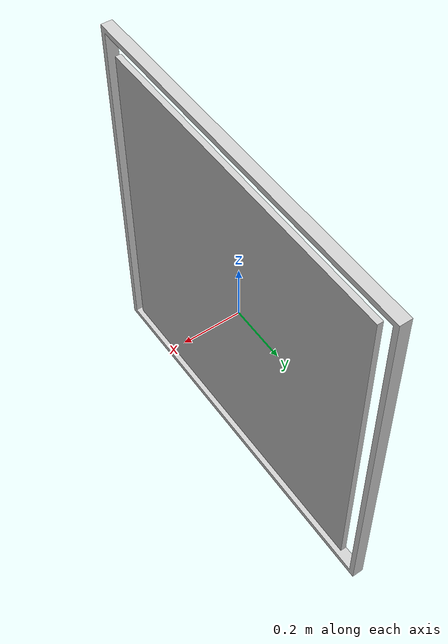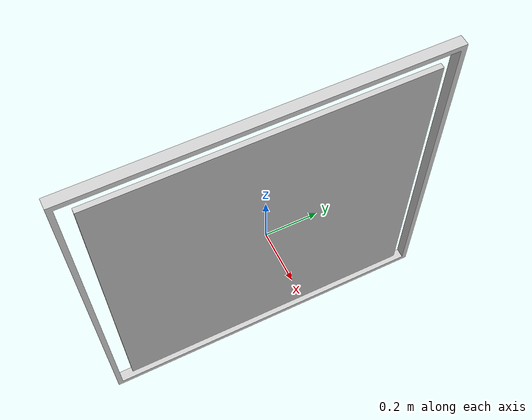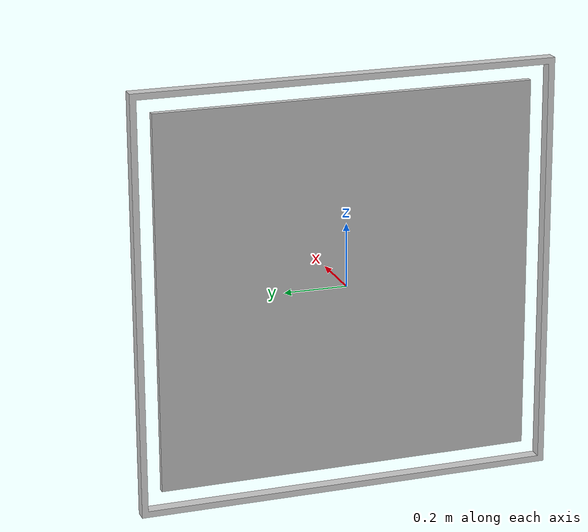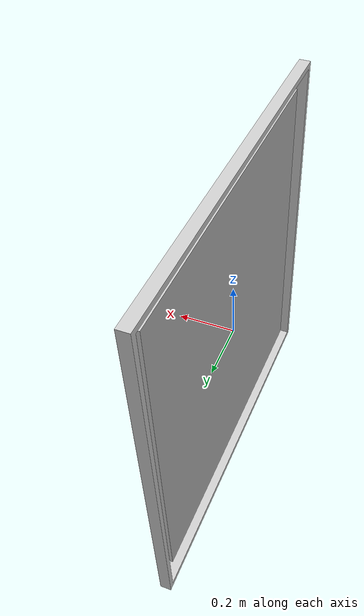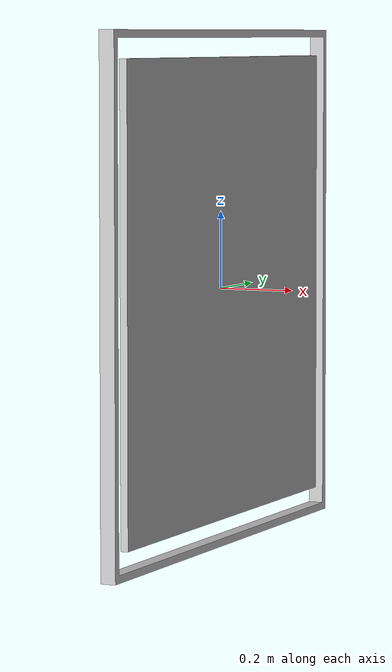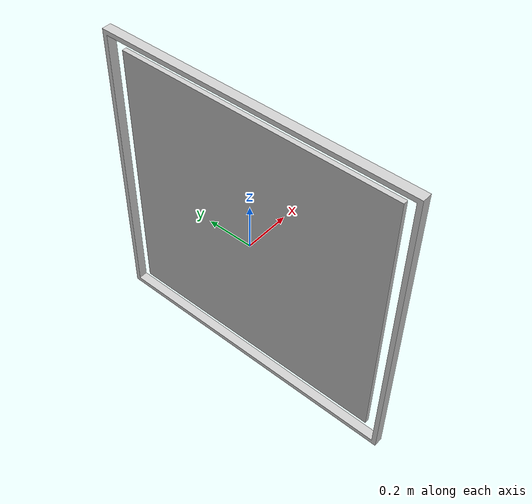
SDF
<?xml version="1.0" ?>
<sdf version="1.5">
  <model name="whirlpool_torpedo_target">
    <static>true</static>
    <link name="base_link">

      <collision name="collision">
        <pose>0 0 0 0 0 0</pose>
        <geometry>
          <mesh>
            <uri>model://whirlpool_torpedo_target/meshes/whirlpool_torpedo_target.dae</uri>
          </mesh>
        </geometry>
      </collision>

      <visual name="visual">
        <cast_shadows>true</cast_shadows>
        <pose>0 0 0 0 0 0</pose>
        <geometry>
          <mesh>
            <uri>model://whirlpool_torpedo_target/meshes/whirlpool_torpedo_target.dae</uri>
          </mesh>
        </geometry>
      </visual>
    </link>
  </model>
</sdf>
